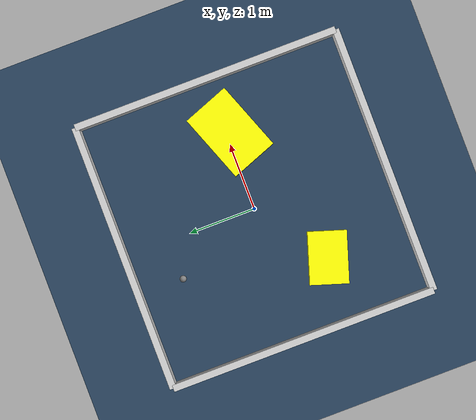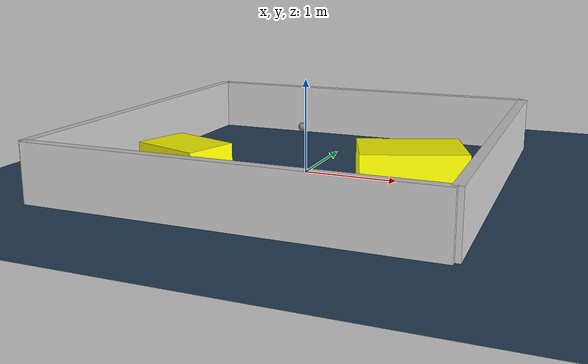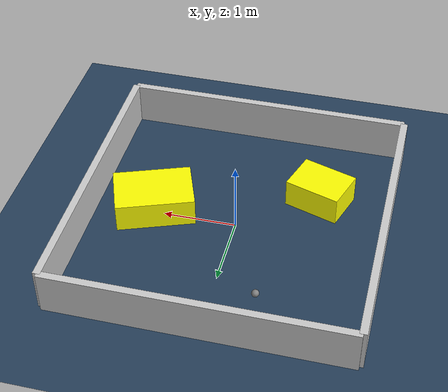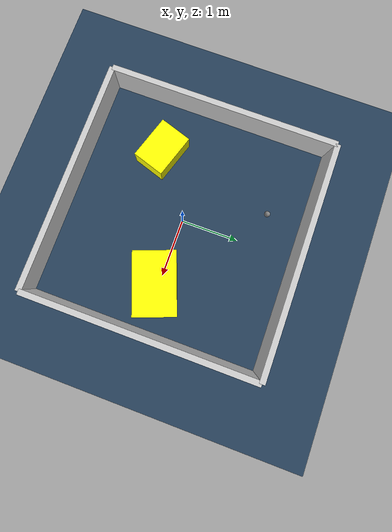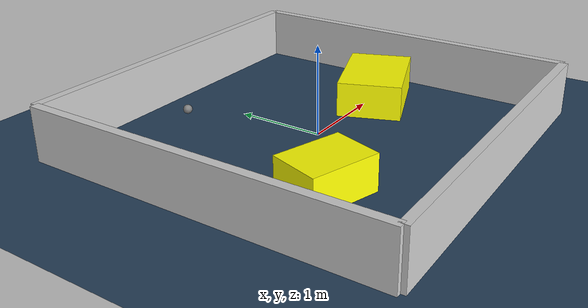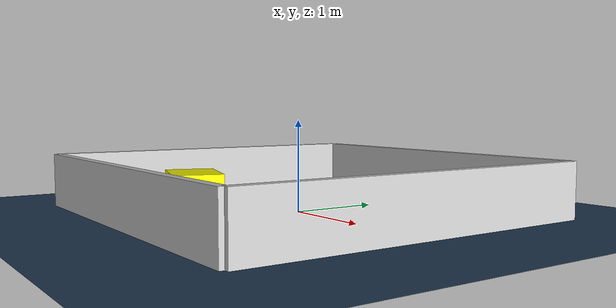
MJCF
<?xml version="1.0" ?>
<mujoco model="generated_environment">
  <option timestep="0.01" integrator="RK4" cone="elliptic"/>
  <default>
    <geom density="1"/>
  </default>
  <asset>
    <texture builtin="gradient" height="3072" rgb1="0.3 0.5 0.7" rgb2="0 0 0" type="skybox" width="512"/>
    <texture builtin="checker" height="300" mark="edge" markrgb="0.8 0.8 0.8" name="groundplane" rgb1="0.2 0.3 0.4" rgb2="0.1 0.2 0.3" type="2d" width="300"/>
    <material name="groundplane" reflectance="0.2" texrepeat="5 5" texture="groundplane" texuniform="true"/>
    <material name="robot" rgba="0.0 1.0 0.0 1"/>
  </asset>
  <worldbody>
    <light dir="0 0 -1" directional="true" pos="0 0 1.5"/>
    <geom condim="4" friction="1.0 0.005 0.001" material="groundplane" name="floor" size="0 0 0.05" type="plane"/>
    <body name="walls">
      <geom name="wall_1" condim="4" pos="-2.0 0.0 0.3" rgba="0.800000011920929 0.800000011920929 0.800000011920929 1.0" size="0.05 2.0 0.3" type="box"/>
      <geom name="wall_2" condim="4" pos="2.0 0.0 0.3" rgba="0.800000011920929 0.800000011920929 0.800000011920929 1.0" size="0.05 2.0 0.3" type="box"/>
      <geom name="wall_3" condim="4" pos="0.0 -2.0 0.3" rgba="0.800000011920929 0.800000011920929 0.800000011920929 1.0" size="2.0 0.05 0.3" type="box"/>
      <geom name="wall_4" condim="4" pos="0.0 2.0 0.3" rgba="0.800000011920929 0.800000011920929 0.800000011920929 1.0" size="2.0 0.05 0.3" type="box"/>
    </body>
    <body name="robot">
      <joint name="joint_x" type="slide" pos="0 0 0" axis="1 0 0"/>
      <joint name="joint_y" type="slide" pos="0 0 0" axis="0 1 0"/>
      <geom name="robot" type="sphere" pos="-0.5814735856646995 1.3236679512060228 0.2" size="0.05" mass="5." friction="1.0 0.005 0.0001" condim="4"/>
      <site name="sensor_ball"/>
    </body>
    <body name="obstacle_1_movable">
      <geom name="obstacle_1_movable" condim="4" pos="1.1615971902623188 -0.06236045124241363 0.2" euler="0 0 200.7664786526322" friction="1.0 0.005 0.001" rgba="1 1 0 1" size="0.5351555976305957 0.3626033899122908 0.2" type="box" mass="0.1"/>
      <joint type="free"/>
    </body>
    <body name="obstacle_2_movable">
      <geom name="obstacle_2_movable" condim="4" pos="-1.0310285948702942 -0.7504529224401809 0.2" euler="0 0 252.11368034940182" friction="1.0 0.005 0.001" rgba="1 1 0 1" size="0.28624122154744447 0.38799929887405193 0.2" type="box" mass="0.1"/>
      <joint type="free"/>
    </body>
  </worldbody>
  <actuator>
    <motor name="actuator_x" joint="joint_x" gear="1" ctrlrange="-1 1"/>
    <motor name="actuator_y" joint="joint_y" gear="1" ctrlrange="-1 1"/>
  </actuator>
</mujoco>
